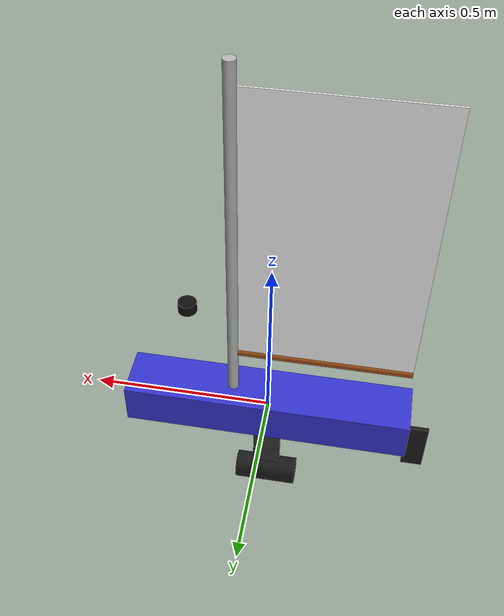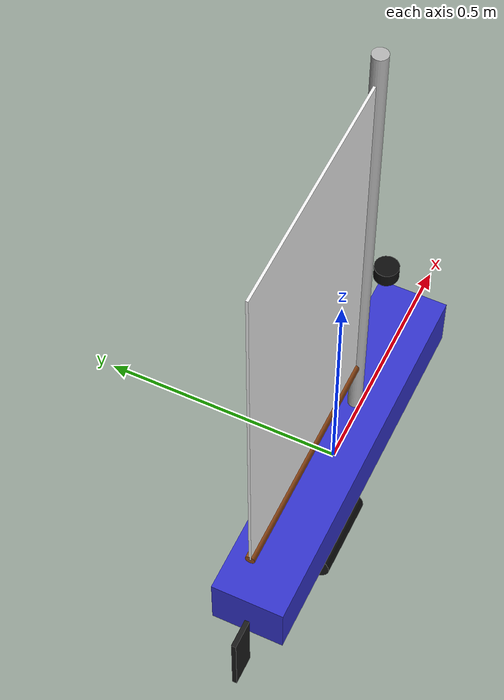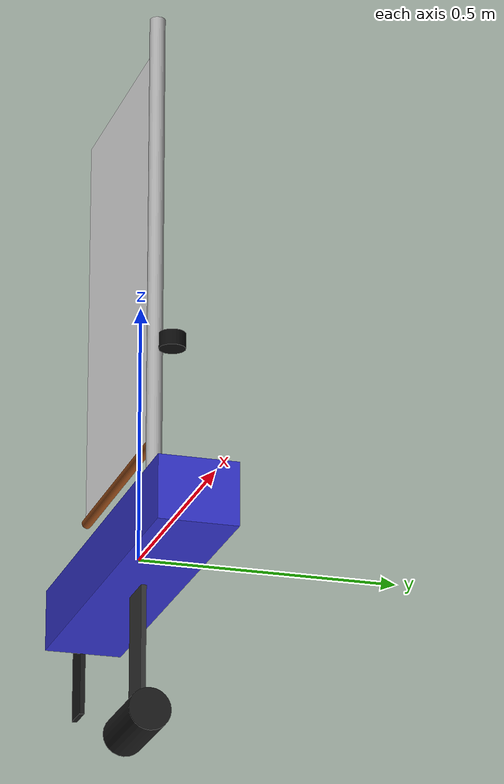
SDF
<?xml version="1.0"?>

<sdf version="1.9">
  <model name="sailboat">

    <static>false</static>

    <!-- BASE LINK / HULL                                      -->

    <link name="base_link">
      <pose>0 0 0 0 0 0</pose>
      <inertial>
        <mass>1.8</mass>
        <inertia>
          <ixx>0.003075</ixx>
          <iyy>0.05453</iyy>
          <izz>0.05521</izz>
          <ixy>0.0</ixy>
          <ixz>0.0</ixz>
          <iyz>0.0</iyz>
        </inertia>
      </inertial>

      <!-- Collision -->
      <collision name="hull_collision">
        <geometry>
          <box>
            <size>0.8 0.15 0.12</size>
          </box>
        </geometry>
      </collision>

      <!-- Visual -->
      <visual name="hull_visual">
        <geometry>
          <box>
            <size>0.8 0.15 0.12</size>
          </box>
        </geometry>
        <material>
          <ambient>0.2 0.2 0.8 1</ambient>
          <diffuse>0.2 0.2 0.8 1</diffuse>
        </material>
      </visual>
    </link>

    <!-- MAST                                                  -->

    <link name="mast_link">
      <pose>0.1 0 0.56 0 0 0</pose>
      <inertial>
        <mass>0.2</mass>
        <inertia>
          <ixx>0.016678</ixx>
          <iyy>0.016678</iyy>
          <izz>0.0000225</izz>
          <ixy>0.0</ixy>
          <ixz>0.0</ixz>
          <iyz>0.0</iyz>
        </inertia>
      </inertial>

      <!-- No collision for stability -->

      <visual name="mast_visual">
        <geometry>
          <cylinder>
            <radius>0.015</radius>
            <length>1.0</length>
          </cylinder>
        </geometry>
        <material>
          <ambient>0.7 0.7 0.7 1</ambient>
          <diffuse>0.7 0.7 0.7 1</diffuse>
        </material>
      </visual>
    </link>

    <!-- BAUM                                                  -->

    <link name="baum_link">
      <!-- Baum center -->
      <pose>0 0 0 0 0 0</pose>
      <inertial>
        <mass>0.1</mass>
        <inertia>
          <ixx>0.000005</ixx>
          <iyy>0.0018433</iyy>
          <izz>0.0018433</izz>
          <ixy>0.0</ixy>
          <ixz>0.0</ixz>
          <iyz>0.0</iyz>
        </inertia>
      </inertial>

      <!-- No collision -->

      <visual name="baum_visual">
        <pose>-0.15 0 0.2 0 1.5708 0</pose>
        <geometry>
          <cylinder>
            <radius>0.01</radius>
            <length>0.47</length>
          </cylinder>
        </geometry>
        <material>
          <ambient>0.6 0.3 0.1 1</ambient>
          <diffuse>0.6 0.3 0.1 1</diffuse>
        </material>
      </visual>
    </link>

    <!-- SAIL                                                   -->

    <link name="sail_link">
      <pose>0 0 0 0 0 0</pose>
      <inertial>
        <mass>0.05</mass>
        <inertia>
          <ixx>0.003587</ixx>
          <iyy>0.003587</iyy>
          <izz>0.003587</izz>
          <ixy>0</ixy>
          <ixz>0</ixz>
          <iyz>0</iyz>
        </inertia>
      </inertial>

      <!-- Thin collision -->
      <collision name="sail_collision">
        <pose>-0.15 0 0.6 0 0 0</pose>
        <geometry>
          <box>
            <size>0.47 0.01 0.80</size>
          </box>
        </geometry>
        <surface>
          <contact>
            <collide_without_contact>true</collide_without_contact>
          </contact>
        </surface>
      </collision>

      <!-- Visual -->
      <visual name="sail_visual">
        <pose>-0.15 0 0.6 0 0 0</pose>
        <geometry>
          <box>
            <size>0.47 0.005 0.80</size>
          </box>
        </geometry>
        <material>
          <ambient>0.95 0.95 0.95 1</ambient>
          <diffuse>0.95 0.95 0.95 1</diffuse>
        </material>
      </visual>
    </link>

    <!-- KEEL FIN                                               -->

    <link name="keel_link">
      <pose>0 0 -0.06 0 0 0</pose>
      <inertial>
        <mass>0.2</mass>
        <inertia>
          <ixx>0.0010433</ixx>
          <iyy>0.0010433</iyy>
          <izz>0.00010833</izz>
          <ixy>0</ixy>
          <ixz>0</ixz>
          <iyz>0</iyz>
        </inertia>
      </inertial>
      <collision name="keel_collision">
        <pose>0 0 -0.12 0 0 0</pose>
        <geometry>
          <box>
            <size>0.08 0.01 0.25</size>
          </box>
        </geometry>
      </collision>
      <visual name="keel_visual">
        <pose>0 0 -0.12 0 0 0</pose>
        <geometry>
          <box>
            <size>0.08 0.01 0.25</size>
          </box>
        </geometry>
        <material>
          <ambient>0.2 0.2 0.2 1</ambient>
          <diffuse>0.2 0.2 0.2 1</diffuse>
        </material>
      </visual>
    </link>

    <!-- BULB                                                   -->

    <link name="bulb_link">
      <pose>0 0 -0.31 0 1.5708 0</pose>
      <inertial>
        <mass>4.0</mass>
        <inertia>
          <ixx>0.0018</ixx>
          <iyy>0.0057</iyy>
          <izz>0.0057</izz>
          <ixy>0</ixy>
          <ixz>0</ixz>
          <iyz>0</iyz>
        </inertia>
      </inertial>

      <collision name="bulb_collision">
        <geometry>
          <cylinder>
            <radius>0.03</radius>
            <length>0.12</length>
          </cylinder>
        </geometry>
      </collision>
      <visual name="bulb_visual">
        <geometry>
          <cylinder>
            <radius>0.04</radius>
            <length>0.18</length>
          </cylinder>
        </geometry>
        <material>
          <ambient>0.1 0.1 0.1 1</ambient>
          <diffuse>0.1 0.1 0.1 1</diffuse>
        </material>
      </visual>
    </link>

    <!-- RUDDER                                                 -->

    <link name="rudder_link">
      <pose>-0.43 0 -0.02 0 0 0</pose>
      <inertial>
        <mass>0.09</mass>
        <inertia>
          <ixx>0.00019275</ixx>
          <iyy>0.000219</iyy>
          <izz>0.00002775</izz>
          <ixy>0</ixy>
          <ixz>0</ixz>
          <iyz>0</iyz>
        </inertia>
      </inertial>

      <!-- Collision -->
      <collision name="rudder_collision">
        <pose>0 0 -0.08 0 0 0</pose>
        <geometry>
          <box>
            <size>0.06 0.01 0.16</size>
          </box>
        </geometry>
      </collision>

      <!-- Visual -->
      <visual name="rudder_visual">
        <pose>0 0 -0.08 0 0 0</pose>
        <geometry>
          <box>
            <size>0.06 0.01 0.16</size>
          </box>
        </geometry>
        <material>
          <ambient>0.1 0.1 0.1 1</ambient>
          <diffuse>0.1 0.1 0.1 1</diffuse>
        </material>
      </visual>
    </link>

    <!-- GPS SENSOR LINK                                     -->

    <link name="gps_link">
      <pose>0 0 0 0 0 0</pose>
      <inertial>
        <mass>0.05</mass>
        <inertia>
          <ixx>0.0001</ixx><ixy>0</ixy><ixz>0</ixz>
          <iyy>0.0001</iyy><iyz>0</iyz>
          <izz>0.0001</izz>
        </inertia>
      </inertial>
      <sensor name="boat_gps" type="navsat">
        <always_on>1</always_on>
        <update_rate>5.0</update_rate>
        <topic>boat/gps/data</topic>
      </sensor>
    </link>

    <!-- IMU SENSOR LINK                                     -->

    <link name="imu_link">
      <pose>0 0 0 0 0 0</pose>
      <inertial>
        <mass>0.01</mass>
        <inertia>
          <ixx>0.00001</ixx><ixy>0</ixy><ixz>0</ixz>
          <iyy>0.00001</iyy><iyz>0</iyz>
          <izz>0.00001</izz>
        </inertia>
      </inertial>
      <sensor name="boat_imu" type="imu">
        <always_on>1</always_on>
        <update_rate>50.0</update_rate>
        <topic>boat/imu/data</topic>
        <imu>
          <angular_velocity>
            <x><noise type="gaussian"><mean>0</mean><stddev>0.0002</stddev></noise></x>
            <y><noise type="gaussian"><mean>0</mean><stddev>0.0002</stddev></noise></y>
            <z><noise type="gaussian"><mean>0</mean><stddev>0.0002</stddev></noise></z>
          </angular_velocity>
          <linear_acceleration>
            <x><noise type="gaussian"><mean>0</mean><stddev>0.017</stddev></noise></x>
            <y><noise type="gaussian"><mean>0</mean><stddev>0.017</stddev></noise></y>
            <z><noise type="gaussian"><mean>0</mean><stddev>0.017</stddev></noise></z>
          </linear_acceleration>
        </imu>
      </sensor>
    </link>

    <!-- LIDAR SENSOR LINK                                   -->

    <link name="lidar_link">
      <pose>0.22 0 0.35 0 0 0</pose>
      <inertial>
        <mass>0.02</mass>
        <inertia>
          <ixx>0.00001</ixx><ixy>0</ixy><ixz>0</ixz>
          <iyy>0.00001</iyy><iyz>0</iyz>
          <izz>0.00001</izz>
        </inertia>
      </inertial>
      <visual name="lidar_visual">
        <geometry>
          <cylinder>
            <radius>0.025</radius>
            <length>0.03</length>
          </cylinder>
        </geometry>
        <material>
          <ambient>0.05 0.05 0.05 1</ambient>
          <diffuse>0.05 0.05 0.05 1</diffuse>
        </material>
      </visual>
      <sensor name="boat_lidar" type="gpu_lidar">
        <always_on>1</always_on>
        <update_rate>10.0</update_rate>
        <topic>boat/lidar/scan</topic>
        <lidar>
          <scan>
            <horizontal>
              <samples>360</samples>
              <resolution>1</resolution>
              <min_angle>-3.14159</min_angle>
              <max_angle>3.14159</max_angle>
            </horizontal>
          </scan>
          <range>
            <min>0.25</min>
            <max>30.0</max>
            <resolution>0.01</resolution>
          </range>
        </lidar>
      </sensor>
    </link>

    <!-- JOINTS                                                -->

    <!-- Mast fixed -->
    <joint name="mast_joint" type="fixed">
      <parent>base_link</parent>
      <child>mast_link</child>
    </joint>

    <!-- Baum -->
    <joint name="baum_joint" type="revolute">
      <parent>mast_link</parent>
      <child>baum_link</child>
      <pose>0.09 0 -0.36 0 0 0</pose>
      <axis>
        <xyz>0 0 1</xyz>
        <limit>
          <lower>-1.57</lower>
          <upper>1.57</upper>
          <effort>1000</effort>
          <velocity>2.0</velocity>
        </limit>
        <dynamics>
          <damping>0.2</damping>
          <friction>0.05</friction>
        </dynamics>
      </axis>
    </joint>

    <!-- Sail fixed to baum -->
    <joint name="sail_joint" type="fixed">
      <parent>baum_link</parent>
      <child>sail_link</child>
    </joint>

    <!-- Keel -->
    <joint name="keel_joint" type="fixed">
      <parent>base_link</parent>
      <child>keel_link</child>
    </joint>

    <!-- Bulb -->
    <joint name="bulb_joint" type="fixed">
      <parent>keel_link</parent>
      <child>bulb_link</child>
    </joint>

    <!-- Rudder -->
    <joint name="rudder_joint" type="revolute">
      <pose>0.03 0 -0.02 0 0 0</pose>
      <parent>base_link</parent>
      <child>rudder_link</child>
      <axis>
        <xyz>0 0 1</xyz>
        <limit>
          <lower>-0.6</lower>
          <upper>0.6</upper>
          <effort>1000</effort>
          <velocity>2.0</velocity>
        </limit>
        <dynamics>
          <damping>0.2</damping>
          <friction>0.05</friction>
        </dynamics>
      </axis>
    </joint>

    <!-- GPS sensor link -->
    <joint name="gps_joint" type="fixed">
      <parent>base_link</parent>
      <child>gps_link</child>
    </joint>

    <!-- IMU sensor link -->
    <joint name="imu_joint" type="fixed">
      <parent>base_link</parent>
      <child>imu_link</child>
    </joint>

    <!-- LiDAR sensor link -->
    <joint name="lidar_joint" type="fixed">
      <parent>base_link</parent>
      <child>lidar_link</child>
    </joint>

    <!-- BUOYANCY / WATER PHYSICS                              -->

    <plugin
        name="vrx::PolyhedraBuoyancyDrag"
        filename="libPolyhedraBuoyancyDrag.so">
      <!-- Water properties -->
      <fluid_density>1000</fluid_density>
      <fluid_level>0.0</fluid_level>
      <!-- Drag -->
      <linear_drag>6.0</linear_drag>
      <angular_drag>3.0</angular_drag>
      <!-- HULL BUOYANCY                                       -->
      <buoyancy name="hull_buoyancy">
        <link_name>base_link</link_name>
        <pose>0 0 -0.06 0 0 0</pose>
        <geometry>
          <box>
            <size>0.8 0.15 0.12</size>
          </box>
        </geometry>
      </buoyancy>

      <buoyancy name="keel_bouyancy">
        <link_name>keel_link</link_name>
        <pose>0 0 -0.12 0 0 0</pose>
        <geometry>
          <box>
            <size>0.08 0.01 0.25</size>
          </box>
        </geometry>
      </buoyancy>

      <buoyancy name="bulb_buoyancy">
        <link_name>bulb_link</link_name>
        <pose>0 0 -0.31 0 1.5708 0</pose>
        <geometry>
          <cylinder>
            <radius>0.03</radius>
            <length>0.12</length>
          </cylinder>
        </geometry>
      </buoyancy>

      <buoyancy name="rudder_buoyancy">
        <link_name>rudder_link</link_name>
        <pose>0 0 -0.08 0 0 0</pose>
        <geometry>
          <box>
            <size>0.06 0.01 0.16</size>
          </box>
        </geometry>
      </buoyancy>

      <!-- WAVES                                               -->
      <wavefield>
        <topic>/vrx/wavefield/parameters</topic>
      </wavefield>
    </plugin>

      <!-- CONTROLLER PLUGINS                                  -->

    <!-- Velocity control -->

    <plugin
        filename="gz-sim-joint-state-publisher-system"
        name="gz::sim::systems::JointStatePublisher">
      <topic>/model/sailboat/joint_state</topic>
      <joint_name>baum_joint</joint_name>
      <joint_name>rudder_joint</joint_name>
    </plugin>

    <!-- Position control -->
    <plugin
        filename="gz-sim-joint-position-controller-system"
        name="gz::sim::systems::JointPositionController">
      <joint_name>baum_joint</joint_name>
      <topic>/actual_baum_pos</topic>
      <p_gain>8.0</p_gain>
    </plugin>

    <plugin
        filename="gz-sim-joint-position-controller-system"
        name="gz::sim::systems::JointPositionController">
      <joint_name>rudder_joint</joint_name>
      <topic>/rudder_pos</topic>
      <p_gain>10.0</p_gain>
    </plugin>

  </model>
</sdf>
